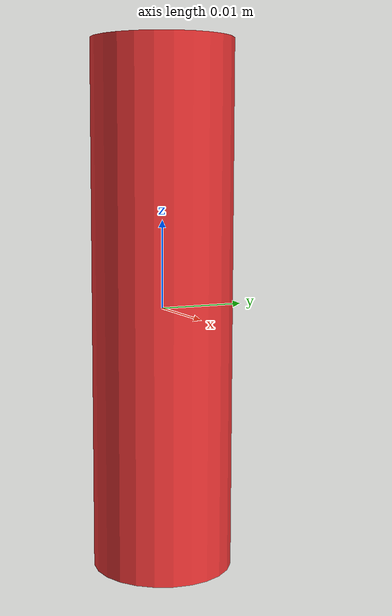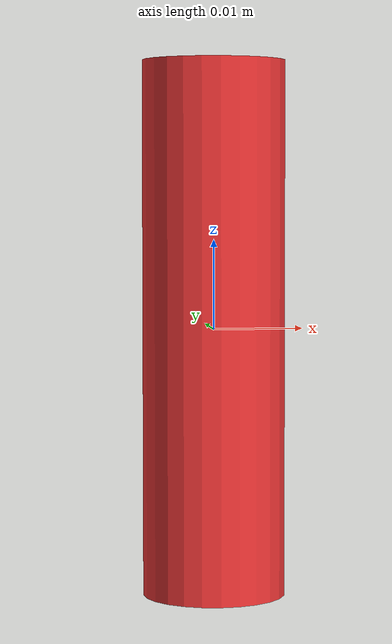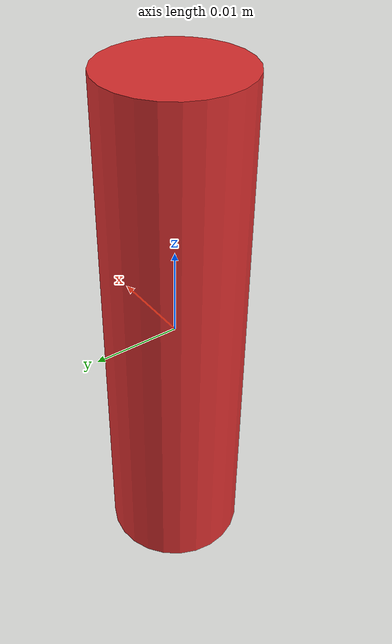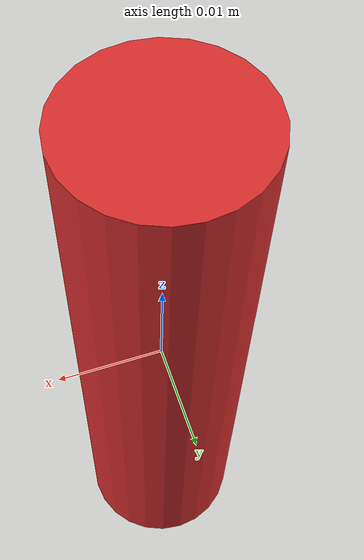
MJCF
<mujoco model="peg">
  <worldbody>
    <body name="peg" pos="0 0 0">
      <geom name="peg" type="cylinder" size="0.008 0.03" rgba="0.85 0.18 0.18 1"
            mass="0.02" friction="1 0.02 0.001" condim="4"/>
    </body>
  </worldbody>
</mujoco>
